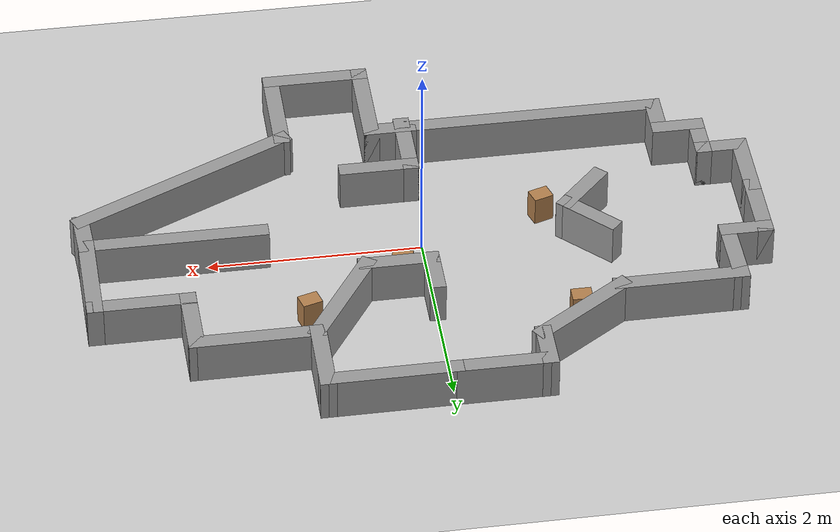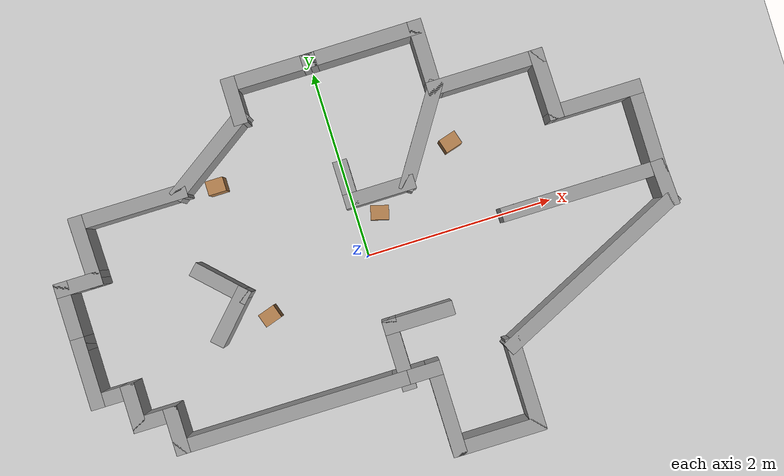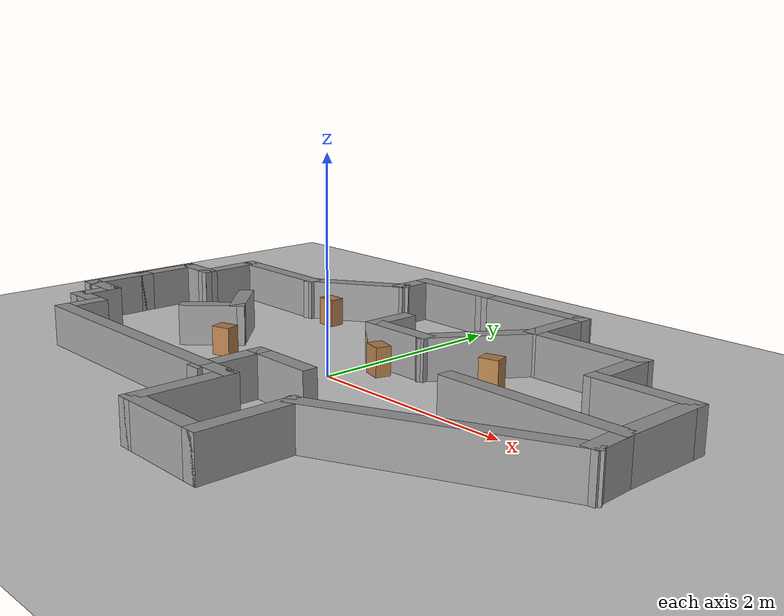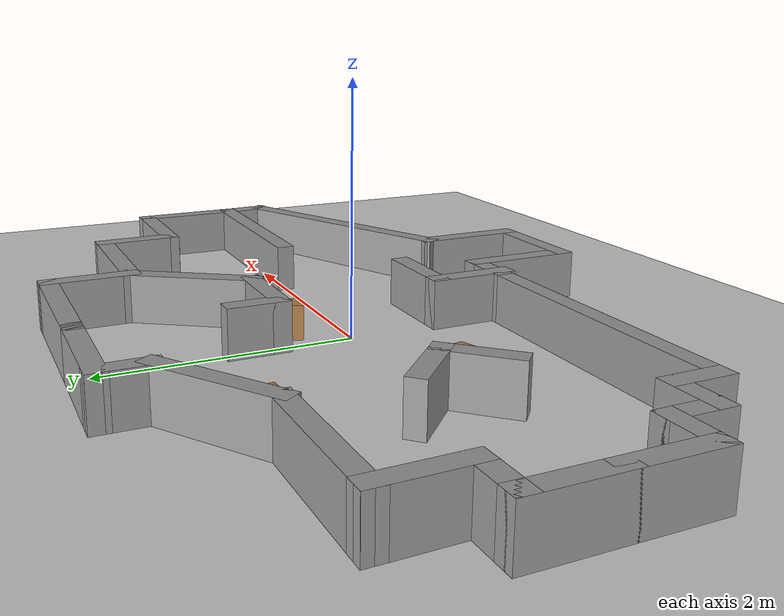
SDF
<sdf version="1.7">
 <world name="default">
  <light name="sun" type="directional">
   <pose>0 0 10 0 -0 0</pose>
   <diffuse>0.8 0.8 0.8 1</diffuse>
   <specular>0.2 0.2 0.2 1</specular>
   <attenuation>
    <range>1000</range>
    <constant>0.9</constant>
    <linear>0.01</linear>
    <quadratic>0.001</quadratic>
   </attenuation>
   <direction>-0.5 0.1 -0.9</direction>
   <spot><inner_angle>0</inner_angle><outer_angle>0</outer_angle><falloff>0</falloff></spot>
  </light>
  <model name="ground_plane">
   <static>1</static>
   <link name="link">
    <collision name="collision">
     <geometry><plane><normal>0 0 1</normal><size>100 100</size></plane></geometry>
     <surface>
      <contact><collide_bitmask>65535</collide_bitmask></contact>
      <friction><ode><mu>100</mu><mu2>50</mu2></ode></friction>
     </surface>
    </collision>
    <visual name="visual">
     <cast_shadows>0</cast_shadows>
     <geometry><plane><normal>0 0 1</normal><size>100 100</size></plane></geometry>
     <material>
      <script><uri>file://media/materials/scripts/gazebo.material</uri><name>Gazebo/Grey</name></script>
     </material>
    </visual>
   </link>
  </model>
  <gravity>0 0 -9.8</gravity>
  <magnetic_field>6e-06 2.3e-05 -4.2e-05</magnetic_field>
  <atmosphere type="adiabatic"/>
  <physics type="ode">
   <real_time_update_rate>0.0</real_time_update_rate>
   <max_step_size>0.003</max_step_size>
   <ode>
    <solver>
     <type>quick</type>
     <iters>150</iters>
     <precon_iters>0</precon_iters>
     <sor>1.400000</sor>
     <use_dynamic_moi_rescaling>1</use_dynamic_moi_rescaling>
    </solver>
    <constraints>
     <cfm>0.00001</cfm>
     <erp>0.2</erp>
     <contact_max_correcting_vel>2000.000000</contact_max_correcting_vel>
     <contact_surface_layer>0.01000</contact_surface_layer>
    </constraints>
   </ode>
  </physics>
  <scene><ambient>0.4 0.4 0.4 1</ambient><background>0.7 0.7 0.7 1</background><shadows>1</shadows></scene>
  <spherical_coordinates>
   <surface_model>EARTH_WGS84</surface_model>
   <latitude_deg>0</latitude_deg>
   <longitude_deg>0</longitude_deg>
   <elevation>0</elevation>
   <heading_deg>0</heading_deg>
  </spherical_coordinates>
  <model name="RAL23_fanhua_1">
   <pose>-0.171966 1.25934 0 0 -0 0</pose>
   <link name="Wall_100">
    <collision name="Wall_100_Collision">
     <geometry><box><size>0.75 0.15 0.4</size></box></geometry>
     <pose>0 0 0.2 0 -0 0</pose>
    </collision>
    <visual name="Wall_100_Visual">
     <pose>0 0 0.2 0 -0 0</pose>
     <geometry><box><size>0.75 0.15 0.4</size></box></geometry>
     <material>
      <script><uri>file://media/materials/scripts/gazebo.material</uri><name>Gazebo/Grey</name></script>
      <ambient>1 1 1 1</ambient>
     </material>
     <meta><layer>0</layer></meta>
    </visual>
    <pose>-2.92852 -0.9635 0 0 -0 1.5708</pose>
   </link>
   <link name="Wall_101">
    <collision name="Wall_101_Collision">
     <geometry><box><size>0.5 0.15 0.4</size></box></geometry>
     <pose>0 0 0.2 0 -0 0</pose>
    </collision>
    <visual name="Wall_101_Visual">
     <pose>0 0 0.2 0 -0 0</pose>
     <geometry><box><size>0.5 0.15 0.4</size></box></geometry>
     <material>
      <script><uri>file://media/materials/scripts/gazebo.material</uri><name>Gazebo/Grey</name></script>
      <ambient>1 1 1 1</ambient>
     </material>
     <meta><layer>0</layer></meta>
    </visual>
    <pose>-2.75352 -0.6635 0 0 -0 0</pose>
   </link>
   <link name="Wall_102">
    <collision name="Wall_102_Collision">
     <geometry><box><size>0.75 0.15 0.4</size></box></geometry>
     <pose>0 0 0.2 0 -0 0</pose>
    </collision>
    <visual name="Wall_102_Visual">
     <pose>0 0 0.2 0 -0 0</pose>
     <geometry><box><size>0.75 0.15 0.4</size></box></geometry>
     <material>
      <script><uri>file://media/materials/scripts/gazebo.material</uri><name>Gazebo/Grey</name></script>
      <ambient>1 1 1 1</ambient>
     </material>
     <meta><layer>0</layer></meta>
    </visual>
    <pose>-2.58302 -0.3635 0 0 -0 1.5858</pose>
   </link>
   <link name="Wall_103">
    <collision name="Wall_103_Collision">
     <geometry><box><size>1.25 0.15 0.4</size></box></geometry>
     <pose>0 0 0.2 0 -0 0</pose>
    </collision>
    <visual name="Wall_103_Visual">
     <pose>0 0 0.2 0 -0 0</pose>
     <geometry><box><size>1.25 0.15 0.4</size></box></geometry>
     <material>
      <script><uri>file://media/materials/scripts/gazebo.material</uri><name>Gazebo/Grey</name></script>
      <ambient>1 1 1 1</ambient>
     </material>
     <meta><layer>0</layer></meta>
    </visual>
    <pose>-2.03752 -0.0635 0 0 -0 0</pose>
   </link>
   <link name="Wall_104">
    <collision name="Wall_104_Collision">
     <geometry><box><size>1.12825 0.15 0.4</size></box></geometry>
     <pose>0 0 0.2 0 -0 0</pose>
    </collision>
    <visual name="Wall_104_Visual">
     <pose>0 0 0.2 0 -0 0</pose>
     <geometry><box><size>1.12825 0.15 0.4</size></box></geometry>
     <material>
      <script><uri>file://media/materials/scripts/gazebo.material</uri><name>Gazebo/Grey</name></script>
      <ambient>1 1 1 1</ambient>
     </material>
     <meta><layer>0</layer></meta>
    </visual>
    <pose>-1.08302 0.2115 0 0 -0 0.597075</pose>
   </link>
   <link name="Wall_107">
    <collision name="Wall_107_Collision">
     <geometry><box><size>0.75 0.15 0.4</size></box></geometry>
     <pose>0 0 0.2 0 -0 0</pose>
    </collision>
    <visual name="Wall_107_Visual">
     <pose>0 0 0.2 0 -0 0</pose>
     <geometry><box><size>0.75 0.15 0.4</size></box></geometry>
     <material>
      <script><uri>file://media/materials/scripts/gazebo.material</uri><name>Gazebo/Grey</name></script>
      <ambient>1 1 1 1</ambient>
     </material>
     <meta><layer>0</layer></meta>
    </visual>
    <pose>0.471476 -0.6635 0 0 -0 0</pose>
   </link>
   <link name="Wall_108">
    <collision name="Wall_108_Collision">
     <geometry><box><size>1.16242 0.15 0.4</size></box></geometry>
     <pose>0 0 0.2 0 -0 0</pose>
    </collision>
    <visual name="Wall_108_Visual">
     <pose>0 0 0.2 0 -0 0</pose>
     <geometry><box><size>1.16242 0.15 0.4</size></box></geometry>
     <material>
      <script><uri>file://media/materials/scripts/gazebo.material</uri><name>Gazebo/Grey</name></script>
      <ambient>1 1 1 1</ambient>
     </material>
     <meta><layer>0</layer></meta>
    </visual>
    <pose>1.04648 -0.2385 0 0 -0 0.996491</pose>
   </link>
   <link name="Wall_113">
    <collision name="Wall_113_Collision">
     <geometry><box><size>0.5 0.15 0.4</size></box></geometry>
     <pose>0 0 0.2 0 -0 0</pose>
    </collision>
    <visual name="Wall_113_Visual">
     <pose>0 0 0.2 0 -0 0</pose>
     <geometry><box><size>0.5 0.15 0.4</size></box></geometry>
     <material>
      <script><uri>file://media/materials/scripts/gazebo.material</uri><name>Gazebo/Grey</name></script>
      <ambient>1 1 1 1</ambient>
     </material>
     <meta><layer>0</layer></meta>
    </visual>
    <pose>0.171476 -0.4885 0 0 -0 1.5708</pose>
   </link>
   <link name="Wall_121">
    <collision name="Wall_121_Collision">
     <geometry><box><size>0.644975 0.15 0.4</size></box></geometry>
     <pose>0 0 0.2 0 -0 0</pose>
    </collision>
    <visual name="Wall_121_Visual">
     <pose>0 0 0.2 0 -0 0</pose>
     <geometry><box><size>0.644975 0.15 0.4</size></box></geometry>
     <material>
      <script><uri>file://media/materials/scripts/gazebo.material</uri><name>Gazebo/Grey</name></script>
      <ambient>1 1 1 1</ambient>
     </material>
     <meta><layer>0</layer></meta>
    </visual>
    <pose>-1.36152 -1.0825 0 0 -0 -0.785398</pose>
   </link>
   <link name="Wall_122">
    <collision name="Wall_122_Collision">
     <geometry><box><size>0.645138 0.15 0.4</size></box></geometry>
     <pose>0 0 0.2 0 -0 0</pose>
    </collision>
    <visual name="Wall_122_Visual">
     <pose>0 0 0.2 0 -0 0</pose>
     <geometry><box><size>0.645138 0.15 0.4</size></box></geometry>
     <material>
      <script><uri>file://media/materials/scripts/gazebo.material</uri><name>Gazebo/Grey</name></script>
      <ambient>1 1 1 1</ambient>
     </material>
     <meta><layer>0</layer></meta>
    </visual>
    <pose>-1.35702 -1.437 0 0 -0 -2.33049</pose>
   </link>
   <link name="Wall_124">
    <collision name="Wall_124_Collision">
     <geometry><box><size>1.75873 0.15 0.4</size></box></geometry>
     <pose>0 0 0.2 0 -0 0</pose>
    </collision>
    <visual name="Wall_124_Visual">
     <pose>0 0 0.2 0 -0 0</pose>
     <geometry><box><size>1.75873 0.15 0.4</size></box></geometry>
     <material>
      <script><uri>file://media/materials/scripts/gazebo.material</uri><name>Gazebo/Grey</name></script>
      <ambient>1 1 1 1</ambient>
     </material>
     <meta><layer>0</layer></meta>
    </visual>
    <pose>2.47598 -1.2635 0 0 -0 3.14159</pose>
   </link>
   <link name="Wall_131">
    <collision name="Wall_131_Collision">
     <geometry><box><size>0.75 0.15 0.4</size></box></geometry>
     <pose>0 0 0.2 0 -0 0</pose>
    </collision>
    <visual name="Wall_131_Visual">
     <pose>0 0 0.2 0 -0 0</pose>
     <geometry><box><size>0.75 0.15 0.4</size></box></geometry>
     <material>
      <script><uri>file://media/materials/scripts/gazebo.material</uri><name>Gazebo/Grey</name></script>
      <ambient>1 1 1 1</ambient>
     </material>
     <meta><layer>0</layer></meta>
    </visual>
    <pose>0.172476 -2.3165 0 0 -0 1.5708</pose>
   </link>
   <link name="Wall_137">
    <collision name="Wall_137_Collision">
     <geometry><box><size>0.75 0.15 0.4</size></box></geometry>
     <pose>0 0 0.2 0 -0 0</pose>
    </collision>
    <visual name="Wall_137_Visual">
     <pose>0 0 0.2 0 -0 0</pose>
     <geometry><box><size>0.75 0.15 0.4</size></box></geometry>
     <material>
      <script><uri>file://media/materials/scripts/gazebo.material</uri><name>Gazebo/Grey</name></script>
      <ambient>1 1 1 1</ambient>
     </material>
     <meta><layer>0</layer></meta>
    </visual>
    <pose>0.472476 -2.0165 0 0 -0 0</pose>
   </link>
   <link name="Wall_144">
    <collision name="Wall_144_Collision">
     <geometry><box><size>0.5 0.15 0.4</size></box></geometry>
     <pose>0 0 0.2 0 -0 0</pose>
    </collision>
    <visual name="Wall_144_Visual">
     <pose>0 0 0.2 0 -0 0</pose>
     <geometry><box><size>0.5 0.15 0.4</size></box></geometry>
     <material>
      <script><uri>file://media/materials/scripts/gazebo.material</uri><name>Gazebo/Grey</name></script>
      <ambient>1 1 1 1</ambient>
     </material>
     <meta><layer>0</layer></meta>
    </visual>
    <pose>0.296476 -2.5635 0 0 -0 3.14159</pose>
   </link>
   <link name="Wall_48">
    <collision name="Wall_48_Collision">
     <geometry><box><size>0.75 0.15 0.4</size></box></geometry>
     <pose>0 0 0.2 0 -0 0</pose>
    </collision>
    <visual name="Wall_48_Visual">
     <pose>0 0 0.2 0 -0 0</pose>
     <geometry><box><size>0.75 0.15 0.4</size></box></geometry>
     <material>
      <script><uri>file://media/materials/scripts/gazebo.material</uri><name>Gazebo/Grey</name></script>
      <ambient>1 1 1 1</ambient>
     </material>
     <meta><layer>0</layer></meta>
    </visual>
    <pose>-2.92852 -1.5635 0 0 -0 -1.5708</pose>
   </link>
   <link name="Wall_61">
    <collision name="Wall_61_Collision">
     <geometry><box><size>0.5 0.15 0.4</size></box></geometry>
     <pose>0 0 0.2 0 -0 0</pose>
    </collision>
    <visual name="Wall_61_Visual">
     <pose>0 0 0.2 0 -0 0</pose>
     <geometry><box><size>0.5 0.15 0.4</size></box></geometry>
     <material>
      <script><uri>file://media/materials/scripts/gazebo.material</uri><name>Gazebo/Grey</name></script>
      <ambient>1 1 1 1</ambient>
     </material>
     <meta><layer>0</layer></meta>
    </visual>
    <pose>-2.75352 -1.8635 0 0 -0 0</pose>
   </link>
   <link name="Wall_62">
    <collision name="Wall_62_Collision">
     <geometry><box><size>0.5 0.15 0.4</size></box></geometry>
     <pose>0 0 0.2 0 -0 0</pose>
    </collision>
    <visual name="Wall_62_Visual">
     <pose>0 0 0.2 0 -0 0</pose>
     <geometry><box><size>0.5 0.15 0.4</size></box></geometry>
     <material>
      <script><uri>file://media/materials/scripts/gazebo.material</uri><name>Gazebo/Grey</name></script>
      <ambient>1 1 1 1</ambient>
     </material>
     <meta><layer>0</layer></meta>
    </visual>
    <pose>-2.57852 -2.0385 0 0 -0 -1.5708</pose>
   </link>
   <link name="Wall_63">
    <collision name="Wall_63_Collision">
     <geometry><box><size>0.499729 0.15 0.4</size></box></geometry>
     <pose>0 0 0.2 0 -0 0</pose>
    </collision>
    <visual name="Wall_63_Visual">
     <pose>0 0 0.2 0 -0 0</pose>
     <geometry><box><size>0.499729 0.15 0.4</size></box></geometry>
     <material>
      <script><uri>file://media/materials/scripts/gazebo.material</uri><name>Gazebo/Grey</name></script>
      <ambient>1 1 1 1</ambient>
     </material>
     <meta><layer>0</layer></meta>
    </visual>
    <pose>-2.40352 -2.2135 0 0 -0 0</pose>
   </link>
   <link name="Wall_64">
    <collision name="Wall_64_Collision">
     <geometry><box><size>0.499658 0.15 0.4</size></box></geometry>
     <pose>0 0 0.2 0 -0 0</pose>
    </collision>
    <visual name="Wall_64_Visual">
     <pose>0 0 0.2 0 -0 0</pose>
     <geometry><box><size>0.499658 0.15 0.4</size></box></geometry>
     <material>
      <script><uri>file://media/materials/scripts/gazebo.material</uri><name>Gazebo/Grey</name></script>
      <ambient>1 1 1 1</ambient>
     </material>
     <meta><layer>0</layer></meta>
    </visual>
    <pose>-2.22852 -2.3885 0 0 -0 -1.5708</pose>
   </link>
   <link name="Wall_65">
    <collision name="Wall_65_Collision">
     <geometry><box><size>2.5 0.15 0.4</size></box></geometry>
     <pose>0 0 0.2 0 -0 0</pose>
    </collision>
    <visual name="Wall_65_Visual">
     <pose>0 0 0.2 0 -0 0</pose>
     <geometry><box><size>2.5 0.15 0.4</size></box></geometry>
     <material>
      <script><uri>file://media/materials/scripts/gazebo.material</uri><name>Gazebo/Grey</name></script>
      <ambient>1 1 1 1</ambient>
     </material>
     <meta><layer>0</layer></meta>
    </visual>
    <pose>-1.05352 -2.5635 0 0 -0 0</pose>
   </link>
   <link name="Wall_67">
    <collision name="Wall_67_Collision">
     <geometry><box><size>1 0.15 0.4</size></box></geometry>
     <pose>0 0 0.2 0 -0 0</pose>
    </collision>
    <visual name="Wall_67_Visual">
     <pose>0 0 0.2 0 -0 0</pose>
     <geometry><box><size>1 0.15 0.4</size></box></geometry>
     <material>
      <script><uri>file://media/materials/scripts/gazebo.material</uri><name>Gazebo/Grey</name></script>
      <ambient>1 1 1 1</ambient>
     </material>
     <meta><layer>0</layer></meta>
    </visual>
    <pose>0.471476 -2.9885 0 0 -0 -1.5708</pose>
   </link>
   <link name="Wall_68">
    <collision name="Wall_68_Collision">
     <geometry><box><size>1 0.15 0.4</size></box></geometry>
     <pose>0 0 0.2 0 -0 0</pose>
    </collision>
    <visual name="Wall_68_Visual">
     <pose>0 0 0.2 0 -0 0</pose>
     <geometry><box><size>1 0.15 0.4</size></box></geometry>
     <material>
      <script><uri>file://media/materials/scripts/gazebo.material</uri><name>Gazebo/Grey</name></script>
      <ambient>1 1 1 1</ambient>
     </material>
     <meta><layer>0</layer></meta>
    </visual>
    <pose>0.896477 -3.4135 0 0 -0 0</pose>
   </link>
   <link name="Wall_69">
    <collision name="Wall_69_Collision">
     <geometry><box><size>1 0.15 0.4</size></box></geometry>
     <pose>0 0 0.2 0 -0 0</pose>
    </collision>
    <visual name="Wall_69_Visual">
     <pose>0 0 0.2 0 -0 0</pose>
     <geometry><box><size>1 0.15 0.4</size></box></geometry>
     <material>
      <script><uri>file://media/materials/scripts/gazebo.material</uri><name>Gazebo/Grey</name></script>
      <ambient>1 1 1 1</ambient>
     </material>
     <meta><layer>0</layer></meta>
    </visual>
    <pose>1.32148 -2.9885 0 0 -0 1.5708</pose>
   </link>
   <link name="Wall_80">
    <collision name="Wall_80_Collision">
     <geometry><box><size>0.500765 0.15 0.4</size></box></geometry>
     <pose>0 0 0.2 0 -0 0</pose>
    </collision>
    <visual name="Wall_80_Visual">
     <pose>0 0 0.2 0 -0 0</pose>
     <geometry><box><size>0.500765 0.15 0.4</size></box></geometry>
     <material>
      <script><uri>file://media/materials/scripts/gazebo.material</uri><name>Gazebo/Grey</name></script>
      <ambient>1 1 1 1</ambient>
     </material>
     <meta><layer>0</layer></meta>
    </visual>
    <pose>3.28898 -1.4385 0 0 -0 -1.52226</pose>
   </link>
   <link name="Wall_81">
    <collision name="Wall_81_Collision">
     <geometry><box><size>2.34241 0.15 0.4</size></box></geometry>
     <pose>0 0 0.2 0 -0 0</pose>
    </collision>
    <visual name="Wall_81_Visual">
     <pose>0 0 0.2 0 -0 0</pose>
     <geometry><box><size>2.34241 0.15 0.4</size></box></geometry>
     <material>
      <script><uri>file://media/materials/scripts/gazebo.material</uri><name>Gazebo/Grey</name></script>
      <ambient>1 1 1 1</ambient>
     </material>
     <meta><layer>0</layer></meta>
    </visual>
    <pose>2.30948 -2.0885 0 0 -0 -2.69345</pose>
   </link>
   <link name="Wall_83">
    <collision name="Wall_83_Collision">
     <geometry><box><size>1 0.15 0.4</size></box></geometry>
     <pose>0 0 0.2 0 -0 0</pose>
    </collision>
    <visual name="Wall_83_Visual">
     <pose>0 0 0.2 0 -0 0</pose>
     <geometry><box><size>1 0.15 0.4</size></box></geometry>
     <material>
      <script><uri>file://media/materials/scripts/gazebo.material</uri><name>Gazebo/Grey</name></script>
      <ambient>1 1 1 1</ambient>
     </material>
     <meta><layer>0</layer></meta>
    </visual>
    <pose>3.28048 -0.8385 0 0 -0 1.5708</pose>
   </link>
   <link name="Wall_84">
    <collision name="Wall_84_Collision">
     <geometry><box><size>1.00027 0.15 0.4</size></box></geometry>
     <pose>0 0 0.2 0 -0 0</pose>
    </collision>
    <visual name="Wall_84_Visual">
     <pose>0 0 0.2 0 -0 0</pose>
     <geometry><box><size>1.00027 0.15 0.4</size></box></geometry>
     <material>
      <script><uri>file://media/materials/scripts/gazebo.material</uri><name>Gazebo/Grey</name></script>
      <ambient>1 1 1 1</ambient>
     </material>
     <meta><layer>0</layer></meta>
    </visual>
    <pose>2.85548 -0.4135 0 0 -0 3.14159</pose>
   </link>
   <link name="Wall_85">
    <collision name="Wall_85_Collision">
     <geometry><box><size>0.75 0.15 0.4</size></box></geometry>
     <pose>0 0 0.2 0 -0 0</pose>
    </collision>
    <visual name="Wall_85_Visual">
     <pose>0 0 0.2 0 -0 0</pose>
     <geometry><box><size>0.75 0.15 0.4</size></box></geometry>
     <material>
      <script><uri>file://media/materials/scripts/gazebo.material</uri><name>Gazebo/Grey</name></script>
      <ambient>1 1 1 1</ambient>
     </material>
     <meta><layer>0</layer></meta>
    </visual>
    <pose>2.42598 -0.1135 0 0 -0 1.5858</pose>
   </link>
   <link name="Wall_86">
    <collision name="Wall_86_Collision">
     <geometry><box><size>1.25 0.15 0.4</size></box></geometry>
     <pose>0 0 0.2 0 -0 0</pose>
    </collision>
    <visual name="Wall_86_Visual">
     <pose>0 0 0.2 0 -0 0</pose>
     <geometry><box><size>1.25 0.15 0.4</size></box></geometry>
     <material>
      <script><uri>file://media/materials/scripts/gazebo.material</uri><name>Gazebo/Grey</name></script>
      <ambient>1 1 1 1</ambient>
     </material>
     <meta><layer>0</layer></meta>
    </visual>
    <pose>1.87148 0.1865 0 0 -0 3.14159</pose>
   </link>
   <link name="Wall_93">
    <collision name="Wall_93_Collision">
     <geometry><box><size>0.8 0.15 0.4</size></box></geometry>
     <pose>0 0 0.2 0 -0 0</pose>
    </collision>
    <visual name="Wall_93_Visual">
     <pose>0 0 0.2 0 -0 0</pose>
     <geometry><box><size>0.8 0.15 0.4</size></box></geometry>
     <material>
      <script><uri>file://media/materials/scripts/gazebo.material</uri><name>Gazebo/Grey</name></script>
      <ambient>1 1 1 1</ambient>
     </material>
     <meta><layer>0</layer></meta>
    </visual>
    <pose>1.32148 0.5115 0 0 -0 1.5708</pose>
   </link>
   <link name="Wall_95">
    <collision name="Wall_95_Collision">
     <geometry><box><size>1.2993 0.15 0.4</size></box></geometry>
     <pose>0 0 0.2 0 -0 0</pose>
    </collision>
    <visual name="Wall_95_Visual">
     <pose>0 0 0.2 0 -0 0</pose>
     <geometry><box><size>1.2993 0.15 0.4</size></box></geometry>
     <material>
      <script><uri>file://media/materials/scripts/gazebo.material</uri><name>Gazebo/Grey</name></script>
      <ambient>1 1 1 1</ambient>
     </material>
     <meta><layer>0</layer></meta>
    </visual>
    <pose>0.746976 0.835 0 0 -0 0.002611</pose>
   </link>
   <link name="Wall_97">
    <collision name="Wall_97_Collision">
     <geometry><box><size>1.00076 0.15 0.4</size></box></geometry>
     <pose>0 0 0.2 0 -0 0</pose>
    </collision>
    <visual name="Wall_97_Visual">
     <pose>0 0 0.2 0 -0 0</pose>
     <geometry><box><size>1.00076 0.15 0.4</size></box></geometry>
     <material>
      <script><uri>file://media/materials/scripts/gazebo.material</uri><name>Gazebo/Grey</name></script>
      <ambient>1 1 1 1</ambient>
     </material>
     <meta><layer>0</layer></meta>
    </visual>
    <pose>-0.253024 0.835 0 0 -0 3.13807</pose>
   </link>
   <link name="Wall_98">
    <collision name="Wall_98_Collision">
     <geometry><box><size>0.5 0.15 0.4</size></box></geometry>
     <pose>0 0 0.2 0 -0 0</pose>
    </collision>
    <visual name="Wall_98_Visual">
     <pose>0 0 0.2 0 -0 0</pose>
     <geometry><box><size>0.5 0.15 0.4</size></box></geometry>
     <material>
      <script><uri>file://media/materials/scripts/gazebo.material</uri><name>Gazebo/Grey</name></script>
      <ambient>1 1 1 1</ambient>
     </material>
     <meta><layer>0</layer></meta>
    </visual>
    <pose>-0.678524 0.6615 0 0 -0 -1.5708</pose>
   </link>
   <static>1</static>
  </model>
  <model name="cube">
   <static>1</static>
   <pose>-1.15999 -0.294324 0 0 -0 0.314083</pose>
   <link name="Wall_28">
    <collision name="Wall_28_Collision">
     <geometry><box><size>0.19 0.15 0.28</size></box></geometry>
     <pose>0 0 0.14 0 -0 0</pose>
    </collision>
    <visual name="Wall_28_Visual">
     <pose>0 0 0.14 0 -0 0</pose>
     <geometry><box><size>0.19 0.15 0.28</size></box></geometry>
     <material>
      <script><uri>file://media/materials/scripts/gazebo.material</uri><name>Gazebo/Wood</name></script>
      <ambient>1 0.764706 0.305882 1</ambient>
     </material>
     <meta><layer>0</layer></meta>
    </visual>
   </link>
   <static>1</static>
  </model>
  <model name="cube_0">
   <static>1</static>
   <pose>1.15402 0.878469 0 0 -0 0.283816</pose>
   <link name="Wall_28">
    <collision name="Wall_28_Collision">
     <geometry><box><size>0.19 0.15 0.28</size></box></geometry>
     <pose>0 0 0.14 0 -0 0</pose>
    </collision>
    <visual name="Wall_28_Visual">
     <pose>0 0 0.14 0 -0 0</pose>
     <geometry><box><size>0.19 0.15 0.28</size></box></geometry>
     <material>
      <script><uri>file://media/materials/scripts/gazebo.material</uri><name>Gazebo/Wood</name></script>
      <ambient>1 0.764706 0.305882 1</ambient>
     </material>
     <meta><layer>0</layer></meta>
    </visual>
   </link>
   <static>1</static>
  </model>
  <model name="cube_1">
   <static>1</static>
   <pose>0.239596 0.395568 0 0 0 -0.272198</pose>
   <link name="Wall_28">
    <collision name="Wall_28_Collision">
     <geometry><box><size>0.19 0.15 0.28</size></box></geometry>
     <pose>0 0 0.14 0 -0 0</pose>
    </collision>
    <visual name="Wall_28_Visual">
     <pose>0 0 0.14 0 -0 0</pose>
     <geometry><box><size>0.19 0.15 0.28</size></box></geometry>
     <material>
      <script><uri>file://media/materials/scripts/gazebo.material</uri><name>Gazebo/Wood</name></script>
      <ambient>1 0.764706 0.305882 1</ambient>
     </material>
     <meta><layer>0</layer></meta>
    </visual>
   </link>
   <static>1</static>
  </model>
  <model name="cube_2">
   <static>1</static>
   <pose>-1.3016 1.1551 0 0 -0 0</pose>
   <link name="Wall_28">
    <collision name="Wall_28_Collision">
     <geometry><box><size>0.19 0.15 0.28</size></box></geometry>
     <pose>0 0 0.14 0 -0 0</pose>
    </collision>
    <visual name="Wall_28_Visual">
     <pose>0 0 0.14 0 -0 0</pose>
     <geometry><box><size>0.19 0.15 0.28</size></box></geometry>
     <material>
      <script><uri>file://media/materials/scripts/gazebo.material</uri><name>Gazebo/Wood</name></script>
      <ambient>1 0.764706 0.305882 1</ambient>
     </material>
     <meta><layer>0</layer></meta>
    </visual>
   </link>
   <static>1</static>
  </model>
 </world>
</sdf>
